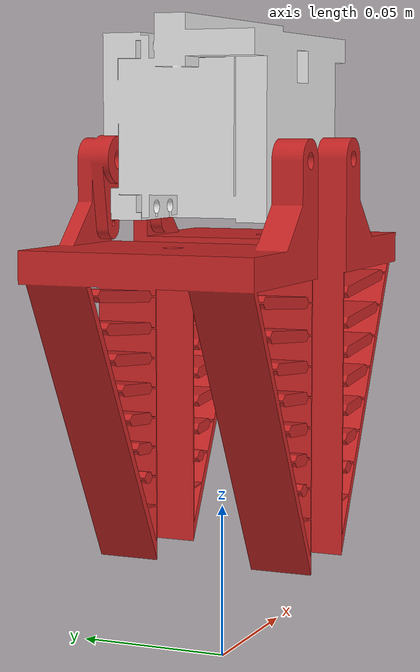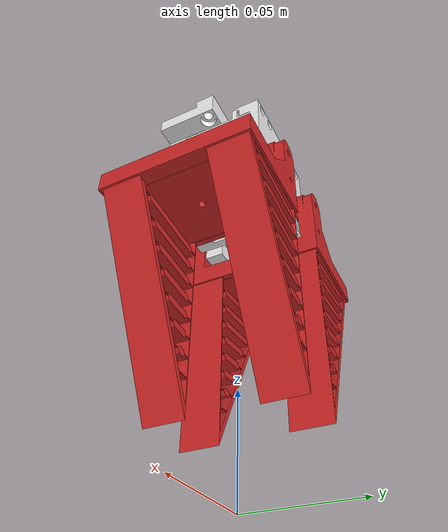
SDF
<?xml version="1.0"?>
<sdf version="1.6">
  <model name='gripper'>
    <link name='gripper_base_link'>
      <pose> 0.0 0.0 0.175 0.0 1.5707963 0.0</pose>
      <inertial>
        <pose>0 0 0 0 0 0</pose>
        <mass>0.05</mass>
        <inertia>
          <ixx>0.029125</ixx>
          <ixy>0</ixy>
          <ixz>0</ixz>
          <iyy>0.029125</iyy>
          <iyz>0</iyz>
          <izz>0.055225</izz>
        </inertia>
      </inertial>
      <self_collide> false</self_collide>
      <collision name='gripper_base_link_inertia_collision'>
        <pose>0 0 0 0 0 0</pose>
        <geometry>
          <box>
            <size>0.02617 0.02689 0.04064</size>
          </box>
        </geometry>
        <surface>
          <contact>
            <ode>
              <min_depth>0.001</min_depth>
              <max_vel>0</max_vel>
            </ode>
          </contact>
          <friction>
            <ode>
              <mu>1000</mu>
              <mu2>1000</mu2>
            </ode>
          </friction>
        </surface>
      </collision>
      <visual name='gripper_base_link_inertia_visual'>
        <pose>0 0 0 0 0 0</pose>
        <geometry>
          <mesh>
            <scale>0.001 0.001 0.001</scale>
            <uri>model://raptor/meshes/gripper_base.stl</uri>
          </mesh>
        </geometry>
        <material>
          <script>
            <name>Gazebo/White</name>
            <uri>file://media/materials/scripts/gazebo.material</uri>
          </script>
        </material>
      </visual>
      <gravity>true</gravity>
      <velocity_decay/>
    </link>

    <joint name='gripper_base_joint' type='fixed'>
      <child>gripper_base_link</child>
      <parent>base_link</parent>
      <axis>
        <xyz>0 0 1</xyz>
        <limit>
          <lower>-1e+16</lower>
          <upper>1e+16</upper>
        </limit>
        <use_parent_model_frame>1</use_parent_model_frame>
      </axis>
    </joint>

    <link name='gripper_left_link'>
      <pose relative_to='gripper_base_link'> 0.05666 0.0 -0.03465 0.0 0.0 0.0</pose>
      <inertial>
        <pose>0 0 0 0 0 0</pose>
        <mass>0.05</mass>
        <inertia>
          <ixx>0.029125</ixx>
          <ixy>0</ixy>
          <ixz>0</ixz>
          <iyy>0.029125</iyy>
          <iyz>0</iyz>
          <izz>0.055225</izz>
        </inertia>
      </inertial>
      <self_collide>false</self_collide>
      <collision name='gripper_left_link_inertia_collision'>
        <pose>0.03417 0 0.02 0 0 0</pose>
        <geometry>
          <box>
            <size>0.1 0.08 0.03</size>
          </box>
        </geometry>
        <surface>
          <friction>
            <ode>
              <mu>1000</mu>
              <mu2>1000</mu2>
            </ode>
          </friction>
        </surface>
        <soft_contact>
          <dart>
            <bone_attachment>10</bone_attachment>
            <stiffness>10</stiffness>
            <damping>10</damping>
            <flesh_mass_fraction>10</flesh_mass_fraction>
          </dart>
        </soft_contact>
      </collision>
      <visual name='gripper_left_link_inertia_visual'>
        <pose>0 0 0 0 0 0</pose>
        <geometry>
          <mesh>
            <scale>0.001 0.001 0.001</scale>
            <uri>model://raptor/meshes/gripper_1.stl</uri>
          </mesh>
        </geometry>
        <material>
          <script>
            <name>Gazebo/Red</name>
            <uri>file://media/materials/scripts/gazebo.material</uri>
          </script>
        </material>
      </visual>
      <gravity>true</gravity>
      <velocity_decay/>
    </link>

    <joint name='gripper_left_joint' type='revolute'>
      <child>gripper_left_link</child>
      <parent>gripper_base_link</parent>
      <axis>
        <xyz>0 1 0</xyz>
        <limit>
          <lower>-1e+16</lower>
          <upper>1e+16</upper>
        </limit>
        <use_parent_model_frame>0</use_parent_model_frame>
      </axis>
      <pose relative_to='gripper_base_link'> 0.01248 0.0 -0.02006 0.0 0.0 0.0</pose>
    </joint>

    <plugin name='gripper_left_plugin' filename='libServoPlugin.so'>
      <subTopic>leftGripper_deg</subTopic>
      <linkName>gripper_left_link</linkName>
      <jointName>gripper_left_joint</jointName>
      <initialAngle>90.0</initialAngle>
      <turningDirection>0</turningDirection> <!-- 0: clockwise, 1: counterclockwise -->
    </plugin>

    <link name='gripper_right_link'>
      <pose relative_to='gripper_base_link'> 0.05666 0.0 0.03465 0.0 0.0 0.0</pose>
      <inertial>
        <pose>0 0 0 0 0 0</pose>
        <mass>0.05</mass>
        <inertia>
          <ixx>0.029125</ixx>
          <ixy>0</ixy>
          <ixz>0</ixz>
          <iyy>0.029125</iyy>
          <iyz>0</iyz>
          <izz>0.055225</izz>
        </inertia>
      </inertial>
      <self_collide>false</self_collide>
      <collision name='gripper_right_link_inertia_collision'>
        <pose>0.03417 0 0.02 0 0 0</pose>
        <geometry>
          <box>
            <size>0.1 0.08 0.03</size>
          </box>
        </geometry>
        <surface>
          <friction>
            <ode>
              <mu>1000</mu>
              <mu2>1000</mu2>
            </ode>
          </friction>
        </surface>
        <soft_contact>
          <dart>
            <bone_attachment>10</bone_attachment>
            <stiffness>10</stiffness>
            <damping>10</damping>
            <flesh_mass_fraction>10</flesh_mass_fraction>
          </dart>
        </soft_contact>
      </collision>
      <visual name='gripper_right_link_inertia_visual'>
        <pose>0 0 0 0 0 0</pose>
        <geometry>
          <mesh>
            <scale>0.001 0.001 0.001</scale>
            <uri>model://gripper/meshes/gripper_2.stl</uri>
          </mesh>
        </geometry>
        <material>
          <script>
            <name>Gazebo/Red</name>
            <uri>file://media/materials/scripts/gazebo.material</uri>
          </script>
        </material>
      </visual>
      <gravity>true</gravity>
      <velocity_decay/>
    </link>

    <joint name='gripper_right_joint' type='revolute'>
      <child>gripper_right_link</child>
      <parent>gripper_base_link</parent>
      <axis>
        <xyz>0 1 0</xyz>
        <limit>
          <lower>-1e+16</lower>
          <upper>1e+16</upper>
        </limit>
        <use_parent_model_frame>0</use_parent_model_frame>
      </axis>
      <pose relative_to='gripper_base_link'> 0.01248 0.0 0.02006 0.0 0.0 0.0</pose>
    </joint>

    <plugin name='gripper_right_plugin' filename='libServoPlugin.so'>
      <subTopic>rightGripper_deg</subTopic>
      <linkName>gripper_right_link</linkName>
      <jointName>gripper_right_joint</jointName>
      <initialAngle>90.0</initialAngle>
      <turningDirection>1</turningDirection> <!-- 0: clockwise, 1: counterclockwise -->
    </plugin>

  </model>
</sdf>
